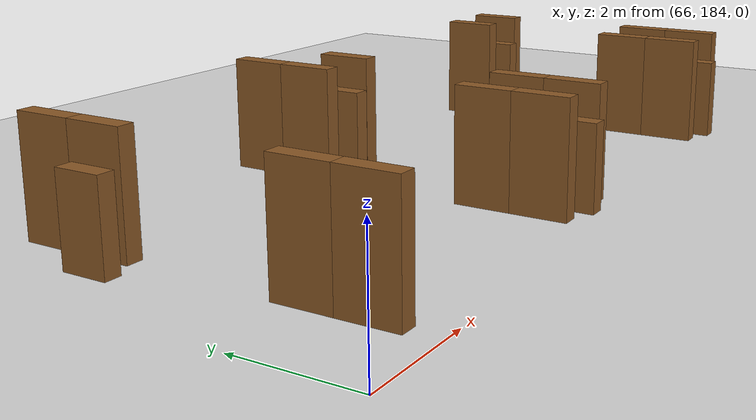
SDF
<sdf version="1.9">
 <world name="realistic_warehouse_150x200m">
  <model name="ground_plane">
   <static>true</static>
   <pose>68.5 102.0 0 0 0 0</pose>
   <link name="ground_link">
    <visual name="ground_visual">
     <geometry><box><size>127.0 194.0 0.01</size></box></geometry>
     <material><ambient>0.85 0.85 0.85 1.0</ambient><diffuse>0.85 0.85 0.85 1.0</diffuse></material>
    </visual>
    <collision name="ground_visual_collision">
     <geometry><box><size>127.0 194.0 0.01</size></box></geometry>
    </collision>
    <collision name="ground_collision">
     <geometry><plane><normal>0 0 1</normal><size>127.0 194.0</size></plane></geometry>
    </collision>
   </link>
  </model>
  <model name="rack_Zone_B_A2_S5_348">
   <static>true</static>
   <pose>67.6 185.0 1.0 0 0 0</pose>
   <link name="rack_Zone_B_A2_S5_348_link">
    <visual name="rack_Zone_B_A2_S5_348_vis">
     <geometry><box><size>0.3 1.0 2.0</size></box></geometry>
     <material><ambient>0.55 0.35 0.15 1.0</ambient><diffuse>0.55 0.35 0.15 1.0</diffuse></material>
    </visual>
    <collision name="rack_Zone_B_A2_S5_348_vis_collision">
     <geometry><box><size>0.3 1.0 2.0</size></box></geometry>
    </collision>
   </link>
  </model>
  <model name="rack_Zone_B_A2_S5_349">
   <static>true</static>
   <pose>67.6 186.0 1.0 0 0 0</pose>
   <link name="rack_Zone_B_A2_S5_349_link">
    <visual name="rack_Zone_B_A2_S5_349_vis">
     <geometry><box><size>0.3 1.0 2.0</size></box></geometry>
     <material><ambient>0.55 0.35 0.15 1.0</ambient><diffuse>0.55 0.35 0.15 1.0</diffuse></material>
    </visual>
    <collision name="rack_Zone_B_A2_S5_349_vis_collision">
     <geometry><box><size>0.3 1.0 2.0</size></box></geometry>
    </collision>
   </link>
  </model>
  <model name="rack_Zone_B_A2_S6_353">
   <static>true</static>
   <pose>67.6 189.5 1.0 0 0 0</pose>
   <link name="rack_Zone_B_A2_S6_353_link">
    <visual name="rack_Zone_B_A2_S6_353_vis">
     <geometry><box><size>0.3 1.0 2.0</size></box></geometry>
     <material><ambient>0.55 0.35 0.15 1.0</ambient><diffuse>0.55 0.35 0.15 1.0</diffuse></material>
    </visual>
    <collision name="rack_Zone_B_A2_S6_353_vis_collision">
     <geometry><box><size>0.3 1.0 2.0</size></box></geometry>
    </collision>
   </link>
  </model>
  <model name="rack_Zone_B_A2_S6_354">
   <static>true</static>
   <pose>67.6 190.5 1.0 0 0 0</pose>
   <link name="rack_Zone_B_A2_S6_354_link">
    <visual name="rack_Zone_B_A2_S6_354_vis">
     <geometry><box><size>0.3 1.0 2.0</size></box></geometry>
     <material><ambient>0.55 0.35 0.15 1.0</ambient><diffuse>0.55 0.35 0.15 1.0</diffuse></material>
    </visual>
    <collision name="rack_Zone_B_A2_S6_354_vis_collision">
     <geometry><box><size>0.3 1.0 2.0</size></box></geometry>
    </collision>
   </link>
  </model>
  <model name="rack_Zone_B_A2_S6_355">
   <static>true</static>
   <pose>67.0 189.2 0.75 0 0 0</pose>
   <link name="rack_Zone_B_A2_S6_355_link">
    <visual name="rack_Zone_B_A2_S6_355_vis">
     <geometry><box><size>0.3 0.8 1.5</size></box></geometry>
     <material><ambient>0.55 0.35 0.15 1.0</ambient><diffuse>0.55 0.35 0.15 1.0</diffuse></material>
    </visual>
    <collision name="rack_Zone_B_A2_S6_355_vis_collision">
     <geometry><box><size>0.3 0.8 1.5</size></box></geometry>
    </collision>
   </link>
  </model>
  <model name="rack_Zone_B_A3_S5_390">
   <static>true</static>
   <pose>72.4 185.0 1.0 0 0 0</pose>
   <link name="rack_Zone_B_A3_S5_390_link">
    <visual name="rack_Zone_B_A3_S5_390_vis">
     <geometry><box><size>0.3 1.0 2.0</size></box></geometry>
     <material><ambient>0.55 0.35 0.15 1.0</ambient><diffuse>0.55 0.35 0.15 1.0</diffuse></material>
    </visual>
    <collision name="rack_Zone_B_A3_S5_390_vis_collision">
     <geometry><box><size>0.3 1.0 2.0</size></box></geometry>
    </collision>
   </link>
  </model>
  <model name="rack_Zone_B_A3_S5_391">
   <static>true</static>
   <pose>72.4 186.0 1.0 0 0 0</pose>
   <link name="rack_Zone_B_A3_S5_391_link">
    <visual name="rack_Zone_B_A3_S5_391_vis">
     <geometry><box><size>0.3 1.0 2.0</size></box></geometry>
     <material><ambient>0.55 0.35 0.15 1.0</ambient><diffuse>0.55 0.35 0.15 1.0</diffuse></material>
    </visual>
    <collision name="rack_Zone_B_A3_S5_391_vis_collision">
     <geometry><box><size>0.3 1.0 2.0</size></box></geometry>
    </collision>
   </link>
  </model>
  <model name="rack_Zone_B_A3_S5_392">
   <static>true</static>
   <pose>73.6 185.0 1.0 0 0 0</pose>
   <link name="rack_Zone_B_A3_S5_392_link">
    <visual name="rack_Zone_B_A3_S5_392_vis">
     <geometry><box><size>0.3 1.0 2.0</size></box></geometry>
     <material><ambient>0.55 0.35 0.15 1.0</ambient><diffuse>0.55 0.35 0.15 1.0</diffuse></material>
    </visual>
    <collision name="rack_Zone_B_A3_S5_392_vis_collision">
     <geometry><box><size>0.3 1.0 2.0</size></box></geometry>
    </collision>
   </link>
  </model>
  <model name="rack_Zone_B_A3_S5_393">
   <static>true</static>
   <pose>73.6 186.0 1.0 0 0 0</pose>
   <link name="rack_Zone_B_A3_S5_393_link">
    <visual name="rack_Zone_B_A3_S5_393_vis">
     <geometry><box><size>0.3 1.0 2.0</size></box></geometry>
     <material><ambient>0.55 0.35 0.15 1.0</ambient><diffuse>0.55 0.35 0.15 1.0</diffuse></material>
    </visual>
    <collision name="rack_Zone_B_A3_S5_393_vis_collision">
     <geometry><box><size>0.3 1.0 2.0</size></box></geometry>
    </collision>
   </link>
  </model>
  <model name="rack_Zone_B_A3_S5_394">
   <static>true</static>
   <pose>73.0 184.7 0.75 0 0 0</pose>
   <link name="rack_Zone_B_A3_S5_394_link">
    <visual name="rack_Zone_B_A3_S5_394_vis">
     <geometry><box><size>0.3 0.8 1.5</size></box></geometry>
     <material><ambient>0.55 0.35 0.15 1.0</ambient><diffuse>0.55 0.35 0.15 1.0</diffuse></material>
    </visual>
    <collision name="rack_Zone_B_A3_S5_394_vis_collision">
     <geometry><box><size>0.3 0.8 1.5</size></box></geometry>
    </collision>
   </link>
  </model>
  <model name="rack_Zone_B_A3_S6_395">
   <static>true</static>
   <pose>72.4 189.5 1.0 0 0 0</pose>
   <link name="rack_Zone_B_A3_S6_395_link">
    <visual name="rack_Zone_B_A3_S6_395_vis">
     <geometry><box><size>0.3 1.0 2.0</size></box></geometry>
     <material><ambient>0.55 0.35 0.15 1.0</ambient><diffuse>0.55 0.35 0.15 1.0</diffuse></material>
    </visual>
    <collision name="rack_Zone_B_A3_S6_395_vis_collision">
     <geometry><box><size>0.3 1.0 2.0</size></box></geometry>
    </collision>
   </link>
  </model>
  <model name="rack_Zone_B_A3_S6_396">
   <static>true</static>
   <pose>72.4 190.5 1.0 0 0 0</pose>
   <link name="rack_Zone_B_A3_S6_396_link">
    <visual name="rack_Zone_B_A3_S6_396_vis">
     <geometry><box><size>0.3 1.0 2.0</size></box></geometry>
     <material><ambient>0.55 0.35 0.15 1.0</ambient><diffuse>0.55 0.35 0.15 1.0</diffuse></material>
    </visual>
    <collision name="rack_Zone_B_A3_S6_396_vis_collision">
     <geometry><box><size>0.3 1.0 2.0</size></box></geometry>
    </collision>
   </link>
  </model>
  <model name="rack_Zone_B_A3_S6_397">
   <static>true</static>
   <pose>73.6 189.5 1.0 0 0 0</pose>
   <link name="rack_Zone_B_A3_S6_397_link">
    <visual name="rack_Zone_B_A3_S6_397_vis">
     <geometry><box><size>0.3 1.0 2.0</size></box></geometry>
     <material><ambient>0.55 0.35 0.15 1.0</ambient><diffuse>0.55 0.35 0.15 1.0</diffuse></material>
    </visual>
    <collision name="rack_Zone_B_A3_S6_397_vis_collision">
     <geometry><box><size>0.3 1.0 2.0</size></box></geometry>
    </collision>
   </link>
  </model>
  <model name="rack_Zone_B_A3_S6_399">
   <static>true</static>
   <pose>73.0 189.2 0.75 0 0 0</pose>
   <link name="rack_Zone_B_A3_S6_399_link">
    <visual name="rack_Zone_B_A3_S6_399_vis">
     <geometry><box><size>0.3 0.8 1.5</size></box></geometry>
     <material><ambient>0.55 0.35 0.15 1.0</ambient><diffuse>0.55 0.35 0.15 1.0</diffuse></material>
    </visual>
    <collision name="rack_Zone_B_A3_S6_399_vis_collision">
     <geometry><box><size>0.3 0.8 1.5</size></box></geometry>
    </collision>
   </link>
  </model>
  <model name="rack_Zone_B_A4_S5_434">
   <static>true</static>
   <pose>78.4 185.0 1.0 0 0 0</pose>
   <link name="rack_Zone_B_A4_S5_434_link">
    <visual name="rack_Zone_B_A4_S5_434_vis">
     <geometry><box><size>0.3 1.0 2.0</size></box></geometry>
     <material><ambient>0.55 0.35 0.15 1.0</ambient><diffuse>0.55 0.35 0.15 1.0</diffuse></material>
    </visual>
    <collision name="rack_Zone_B_A4_S5_434_vis_collision">
     <geometry><box><size>0.3 1.0 2.0</size></box></geometry>
    </collision>
   </link>
  </model>
  <model name="rack_Zone_B_A4_S5_435">
   <static>true</static>
   <pose>78.4 186.0 1.0 0 0 0</pose>
   <link name="rack_Zone_B_A4_S5_435_link">
    <visual name="rack_Zone_B_A4_S5_435_vis">
     <geometry><box><size>0.3 1.0 2.0</size></box></geometry>
     <material><ambient>0.55 0.35 0.15 1.0</ambient><diffuse>0.55 0.35 0.15 1.0</diffuse></material>
    </visual>
    <collision name="rack_Zone_B_A4_S5_435_vis_collision">
     <geometry><box><size>0.3 1.0 2.0</size></box></geometry>
    </collision>
   </link>
  </model>
  <model name="rack_Zone_B_A4_S5_436">
   <static>true</static>
   <pose>79.6 185.0 1.0 0 0 0</pose>
   <link name="rack_Zone_B_A4_S5_436_link">
    <visual name="rack_Zone_B_A4_S5_436_vis">
     <geometry><box><size>0.3 1.0 2.0</size></box></geometry>
     <material><ambient>0.55 0.35 0.15 1.0</ambient><diffuse>0.55 0.35 0.15 1.0</diffuse></material>
    </visual>
    <collision name="rack_Zone_B_A4_S5_436_vis_collision">
     <geometry><box><size>0.3 1.0 2.0</size></box></geometry>
    </collision>
   </link>
  </model>
  <model name="rack_Zone_B_A4_S5_437">
   <static>true</static>
   <pose>79.6 186.0 1.0 0 0 0</pose>
   <link name="rack_Zone_B_A4_S5_437_link">
    <visual name="rack_Zone_B_A4_S5_437_vis">
     <geometry><box><size>0.3 1.0 2.0</size></box></geometry>
     <material><ambient>0.55 0.35 0.15 1.0</ambient><diffuse>0.55 0.35 0.15 1.0</diffuse></material>
    </visual>
    <collision name="rack_Zone_B_A4_S5_437_vis_collision">
     <geometry><box><size>0.3 1.0 2.0</size></box></geometry>
    </collision>
   </link>
  </model>
  <model name="rack_Zone_B_A4_S5_438">
   <static>true</static>
   <pose>79.0 184.7 0.75 0 0 0</pose>
   <link name="rack_Zone_B_A4_S5_438_link">
    <visual name="rack_Zone_B_A4_S5_438_vis">
     <geometry><box><size>0.3 0.8 1.5</size></box></geometry>
     <material><ambient>0.55 0.35 0.15 1.0</ambient><diffuse>0.55 0.35 0.15 1.0</diffuse></material>
    </visual>
    <collision name="rack_Zone_B_A4_S5_438_vis_collision">
     <geometry><box><size>0.3 0.8 1.5</size></box></geometry>
    </collision>
   </link>
  </model>
  <model name="rack_Zone_B_A4_S6_439">
   <static>true</static>
   <pose>78.4 189.5 1.0 0 0 0</pose>
   <link name="rack_Zone_B_A4_S6_439_link">
    <visual name="rack_Zone_B_A4_S6_439_vis">
     <geometry><box><size>0.3 1.0 2.0</size></box></geometry>
     <material><ambient>0.55 0.35 0.15 1.0</ambient><diffuse>0.55 0.35 0.15 1.0</diffuse></material>
    </visual>
    <collision name="rack_Zone_B_A4_S6_439_vis_collision">
     <geometry><box><size>0.3 1.0 2.0</size></box></geometry>
    </collision>
   </link>
  </model>
  <model name="rack_Zone_B_A4_S6_441">
   <static>true</static>
   <pose>79.6 189.5 1.0 0 0 0</pose>
   <link name="rack_Zone_B_A4_S6_441_link">
    <visual name="rack_Zone_B_A4_S6_441_vis">
     <geometry><box><size>0.3 1.0 2.0</size></box></geometry>
     <material><ambient>0.55 0.35 0.15 1.0</ambient><diffuse>0.55 0.35 0.15 1.0</diffuse></material>
    </visual>
    <collision name="rack_Zone_B_A4_S6_441_vis_collision">
     <geometry><box><size>0.3 1.0 2.0</size></box></geometry>
    </collision>
   </link>
  </model>
  <model name="rack_Zone_B_A4_S6_443">
   <static>true</static>
   <pose>79.0 189.2 0.75 0 0 0</pose>
   <link name="rack_Zone_B_A4_S6_443_link">
    <visual name="rack_Zone_B_A4_S6_443_vis">
     <geometry><box><size>0.3 0.8 1.5</size></box></geometry>
     <material><ambient>0.55 0.35 0.15 1.0</ambient><diffuse>0.55 0.35 0.15 1.0</diffuse></material>
    </visual>
    <collision name="rack_Zone_B_A4_S6_443_vis_collision">
     <geometry><box><size>0.3 0.8 1.5</size></box></geometry>
    </collision>
   </link>
  </model>
 </world>
</sdf>
